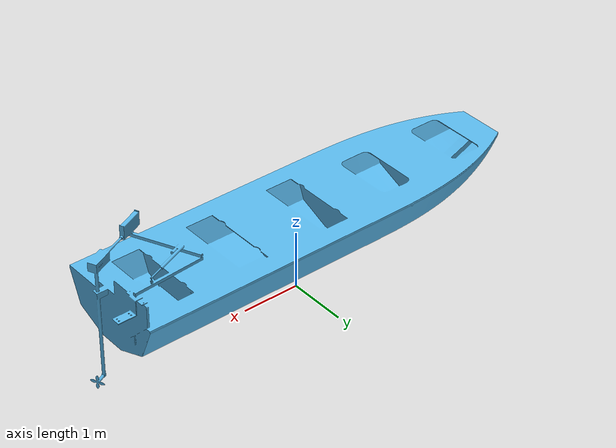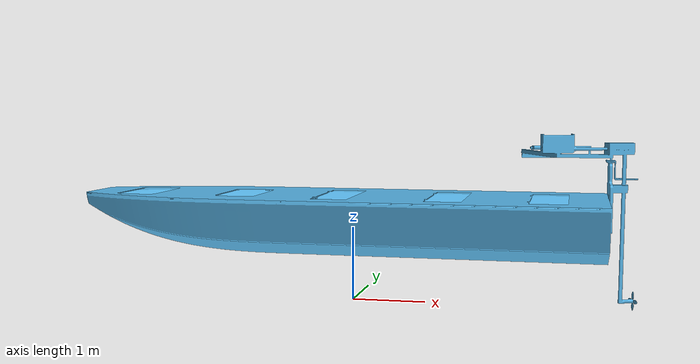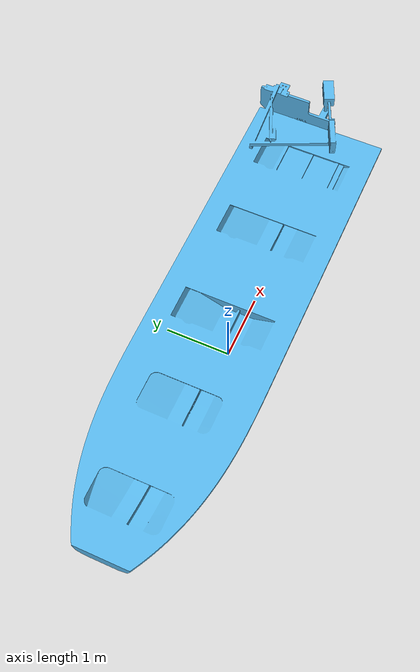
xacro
<?xml version="1.0"?>
<robot xmlns:xacro="http://ros.org/wiki/xacro" name="lpv-4">
  <xacro:arg name="namespace" default="lpv"/>
  <xacro:property name="namespace" value="$(arg namespace)" scope="global" />

  <xacro:macro name="main_collisions" params="prefix reflect:=1">
    <!-- Main float -->
    <collision name="${prefix}_float">
      <origin xyz="-0.4 ${1.03*reflect} 0.2" rpy="${0*reflect} 1.57 0" />
      <geometry>
        <cylinder length="4" radius="0.2" />
      </geometry>
    </collision>

    <collision name="${prefix}_mid_float">
      <origin xyz="1.85 ${1.03*reflect} 0.3" rpy="${0*reflect} 1.38 0" />
      <geometry>
        <cylinder length="0.5" radius="0.17" />
      </geometry>
    </collision>
    <collision name="${prefix}_front_float">
      <origin xyz="2.3 ${1.03*reflect} 0.4" rpy="${0*reflect} 1.3 0" />
      <geometry>
        <cylinder length="0.45" radius="0.12" />
      </geometry>
    </collision>

    <!-- Front beam -->
    <collision name="front_${prefix}_beam_lower">
      <origin xyz="0.9 ${0.85*reflect} 1" rpy="${0.78*reflect} 0 0" />
      <geometry>
        <cylinder length="0.5" radius="0.04" />
      </geometry>
    </collision>

    <collision name="front_${prefix}_beam_upper">
      <origin xyz="0.9 ${0.6*reflect} 1.18" rpy="${1.35*reflect} 0 0" />
      <geometry>
        <cylinder length="0.2" radius="0.04" />
      </geometry>
    </collision>

    <!-- Mid beam -->
    <collision name="mid_${prefix}_beam_lower">
      <origin xyz="-0.65 ${0.99*reflect} 0.7" rpy="${0.1*reflect} 0.25 0" />
      <geometry>
        <cylinder length="0.45" radius="0.03" />
      </geometry>
    </collision>

    <collision name="mid_${prefix}_beam_medium">
      <origin xyz="-0.57 ${0.87*reflect} 1.05" rpy="${0.75*reflect} 0.25 0" />
      <geometry>
        <cylinder length="0.32" radius="0.03" />
      </geometry>
    </collision>

    <collision name="mid_${prefix}_beam_upper">
      <origin xyz="-0.55 ${0.65*reflect} 1.17" rpy="${1.35*reflect} 0.25 0" />
      <geometry>
        <cylinder length="0.3" radius="0.03" />
      </geometry>
    </collision>

    <!-- Rear beam -->
    <collision name="rear_${prefix}_beam_lower">
      <origin xyz="-0.74 ${1.03*reflect} 0.7" rpy="${0*reflect} -0.15 0" />
      <geometry>
        <cylinder length="0.45" radius="0.03" />
      </geometry>
    </collision>

    <collision name="rear_${prefix}_beam_medium">
      <origin xyz="-0.79 ${0.91*reflect} 1.05" rpy="${0.75*reflect} -0.15 0" />
      <geometry>
        <cylinder length="0.32" radius="0.03" />
      </geometry>
    </collision>

    <collision name="rear_${prefix}_beam_upper">
      <origin xyz="-0.81 ${0.67*reflect} 1.18" rpy="${1.45*reflect} -0.15 0" />
      <geometry>
        <cylinder length="0.3" radius="0.03" />
      </geometry>
    </collision>

    <!-- Joint -->
    <collision name="${prefix}_joint">
      <origin xyz="0.58 ${1.03*reflect} 0.6" rpy="${0*reflect} -0.6 0" />
      <geometry>
        <box size="0.65 0.2 0.1" />
      </geometry>
    </collision>
  </xacro:macro>

  <link name="${namespace}/base_link">
  </link>

  <joint name="${namespace}/dummy_joint" type = "fixed">
    <parent link="${namespace}/base_link"/>
    <child link="${namespace}/dummy_link"/>
  </joint>

    <link name="${namespace}/dummy_link">

    <visual>
      <geometry>
        <mesh filename="package://lpv_description/models/LPV-Base/mesh/lpv_base.dae" scale="0.05 0.05 0.05"/>
      </geometry>
    </visual>

    <!-- Left base collisions -->
    <xacro:main_collisions prefix="left" reflect="1" />

    <!-- Right side collisions -->
    <xacro:main_collisions prefix="right" reflect="-1" />

     <!-- Top base -->
    <collision name="top_base">
      <origin xyz="0 -0 0.1" rpy="0 0 0" />
      <geometry>
        <box size="1 1 0.1" />
      </geometry>
    </collision>

    <inertial>
      <!-- From WAM-V spec sheet -->
      <mass value="180.0"/>
      <inertia ixx="120.0" ixy="0.0" ixz="0.0" iyy="393" iyz="0.0" izz="446.0"/>
    </inertial>
  </link>

</robot>
